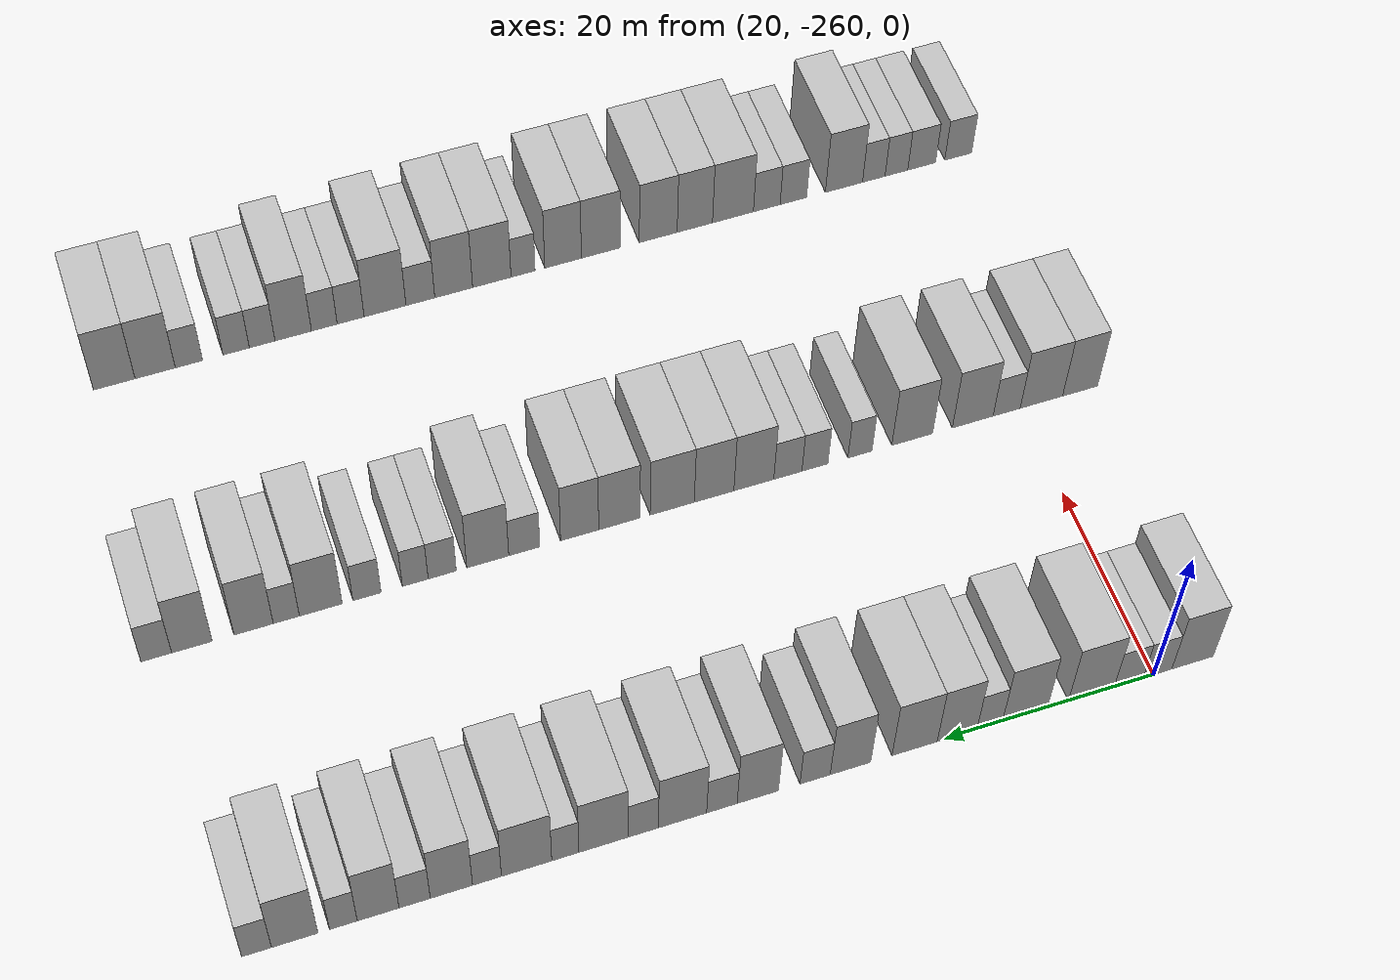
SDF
<sdf version="1.6">
 <world name="default">
  <model name="building_50">
   <static>1</static>
   <pose>25.0000 -263.7779 0 0.000000 0.000000 0.000000</pose>
   <link name="link">
    <pose>0 0 4.50 0 0 0</pose>
    <collision name="collision"><geometry><box><size>10.0000 4.0511 9.0000</size></box></geometry></collision>
    <visual name="visual">
     <cast_shadows>0</cast_shadows>
     <geometry><box><size>10.0000 4.0511 9.0000</size></box></geometry>
     <material>
      <script>
       <uri>model://HANNAS_wall/materials/scripts</uri>
       <uri>model://HANNAS_wall/materials/textures</uri>
       <name>vrc/HANNAS_wall</name>
      </script>
     </material>
    </visual>
   </link>
  </model>
  <model name="building_51">
   <static>1</static>
   <pose>25.0000 -260.3694 0 0.000000 0.000000 0.000000</pose>
   <link name="link">
    <pose>0 0 3.00 0 0 0</pose>
    <collision name="collision"><geometry><box><size>10.0000 2.7658 6.0000</size></box></geometry></collision>
    <visual name="visual">
     <cast_shadows>0</cast_shadows>
     <geometry><box><size>10.0000 2.7658 6.0000</size></box></geometry>
     <material>
      <script>
       <uri>model://HANNAS_wall/materials/scripts</uri>
       <uri>model://HANNAS_wall/materials/textures</uri>
       <name>vrc/HANNAS_wall</name>
      </script>
     </material>
    </visual>
   </link>
  </model>
  <model name="building_52">
   <static>1</static>
   <pose>25.0000 -257.5823 0 0.000000 0.000000 0.000000</pose>
   <link name="link">
    <pose>0 0 3.00 0 0 0</pose>
    <collision name="collision"><geometry><box><size>10.0000 2.8084 6.0000</size></box></geometry></collision>
    <visual name="visual">
     <cast_shadows>0</cast_shadows>
     <geometry><box><size>10.0000 2.8084 6.0000</size></box></geometry>
     <material>
      <script>
       <uri>model://HANNAS_wall/materials/scripts</uri>
       <uri>model://HANNAS_wall/materials/textures</uri>
       <name>vrc/HANNAS_wall</name>
      </script>
     </material>
    </visual>
   </link>
  </model>
  <model name="building_53">
   <static>1</static>
   <pose>25.0000 -253.9620 0 0.000000 0.000000 0.000000</pose>
   <link name="link">
    <pose>0 0 4.50 0 0 0</pose>
    <collision name="collision"><geometry><box><size>10.0000 4.4323 9.0000</size></box></geometry></collision>
    <visual name="visual">
     <cast_shadows>0</cast_shadows>
     <geometry><box><size>10.0000 4.4323 9.0000</size></box></geometry>
     <material>
      <script>
       <uri>model://HANNAS_wall/materials/scripts</uri>
       <uri>model://HANNAS_wall/materials/textures</uri>
       <name>vrc/HANNAS_wall</name>
      </script>
     </material>
    </visual>
   </link>
  </model>
  <model name="building_54">
   <static>1</static>
   <pose>25.0000 -247.5937 0 0.000000 0.000000 0.000000</pose>
   <link name="link">
    <pose>0 0 4.50 0 0 0</pose>
    <collision name="collision"><geometry><box><size>10.0000 4.3042 9.0000</size></box></geometry></collision>
    <visual name="visual">
     <cast_shadows>0</cast_shadows>
     <geometry><box><size>10.0000 4.3042 9.0000</size></box></geometry>
     <material>
      <script>
       <uri>model://HANNAS_wall/materials/scripts</uri>
       <uri>model://HANNAS_wall/materials/textures</uri>
       <name>vrc/HANNAS_wall</name>
      </script>
     </material>
    </visual>
   </link>
  </model>
  <model name="building_55">
   <static>1</static>
   <pose>25.0000 -244.2251 0 0.000000 0.000000 0.000000</pose>
   <link name="link">
    <pose>0 0 3.00 0 0 0</pose>
    <collision name="collision"><geometry><box><size>10.0000 2.4330 6.0000</size></box></geometry></collision>
    <visual name="visual">
     <cast_shadows>0</cast_shadows>
     <geometry><box><size>10.0000 2.4330 6.0000</size></box></geometry>
     <material>
      <script>
       <uri>model://HANNAS_wall/materials/scripts</uri>
       <uri>model://HANNAS_wall/materials/textures</uri>
       <name>vrc/HANNAS_wall</name>
      </script>
     </material>
    </visual>
   </link>
  </model>
  <model name="building_56">
   <static>1</static>
   <pose>25.0000 -241.1319 0 0.000000 0.000000 0.000000</pose>
   <link name="link">
    <pose>0 0 4.50 0 0 0</pose>
    <collision name="collision"><geometry><box><size>10.0000 3.7533 9.0000</size></box></geometry></collision>
    <visual name="visual">
     <cast_shadows>0</cast_shadows>
     <geometry><box><size>10.0000 3.7533 9.0000</size></box></geometry>
     <material>
      <script>
       <uri>model://HANNAS_wall/materials/scripts</uri>
       <uri>model://HANNAS_wall/materials/textures</uri>
       <name>vrc/HANNAS_wall</name>
      </script>
     </material>
    </visual>
   </link>
  </model>
  <model name="building_57">
   <static>1</static>
   <pose>25.0000 -237.1283 0 0.000000 0.000000 0.000000</pose>
   <link name="link">
    <pose>0 0 4.50 0 0 0</pose>
    <collision name="collision"><geometry><box><size>10.0000 4.2540 9.0000</size></box></geometry></collision>
    <visual name="visual">
     <cast_shadows>0</cast_shadows>
     <geometry><box><size>10.0000 4.2540 9.0000</size></box></geometry>
     <material>
      <script>
       <uri>model://HANNAS_wall/materials/scripts</uri>
       <uri>model://HANNAS_wall/materials/textures</uri>
       <name>vrc/HANNAS_wall</name>
      </script>
     </material>
    </visual>
   </link>
  </model>
  <model name="building_58">
   <static>1</static>
   <pose>25.0000 -231.1144 0 0.000000 0.000000 0.000000</pose>
   <link name="link">
    <pose>0 0 4.50 0 0 0</pose>
    <collision name="collision"><geometry><box><size>10.0000 3.7738 9.0000</size></box></geometry></collision>
    <visual name="visual">
     <cast_shadows>0</cast_shadows>
     <geometry><box><size>10.0000 3.7738 9.0000</size></box></geometry>
     <material>
      <script>
       <uri>model://HANNAS_wall/materials/scripts</uri>
       <uri>model://HANNAS_wall/materials/textures</uri>
       <name>vrc/HANNAS_wall</name>
      </script>
     </material>
    </visual>
   </link>
  </model>
  <model name="building_59">
   <static>1</static>
   <pose>25.0000 -227.8237 0 0.000000 0.000000 0.000000</pose>
   <link name="link">
    <pose>0 0 3.00 0 0 0</pose>
    <collision name="collision"><geometry><box><size>10.0000 2.8077 6.0000</size></box></geometry></collision>
    <visual name="visual">
     <cast_shadows>0</cast_shadows>
     <geometry><box><size>10.0000 2.8077 6.0000</size></box></geometry>
     <material>
      <script>
       <uri>model://HANNAS_wall/materials/scripts</uri>
       <uri>model://HANNAS_wall/materials/textures</uri>
       <name>vrc/HANNAS_wall</name>
      </script>
     </material>
    </visual>
   </link>
  </model>
  <model name="building_60">
   <static>1</static>
   <pose>25.0000 -222.5202 0 0.000000 0.000000 0.000000</pose>
   <link name="link">
    <pose>0 0 4.50 0 0 0</pose>
    <collision name="collision"><geometry><box><size>10.0000 3.7992 9.0000</size></box></geometry></collision>
    <visual name="visual">
     <cast_shadows>0</cast_shadows>
     <geometry><box><size>10.0000 3.7992 9.0000</size></box></geometry>
     <material>
      <script>
       <uri>model://HANNAS_wall/materials/scripts</uri>
       <uri>model://HANNAS_wall/materials/textures</uri>
       <name>vrc/HANNAS_wall</name>
      </script>
     </material>
    </visual>
   </link>
  </model>
  <model name="building_61">
   <static>1</static>
   <pose>25.0000 -219.2233 0 0.000000 0.000000 0.000000</pose>
   <link name="link">
    <pose>0 0 3.00 0 0 0</pose>
    <collision name="collision"><geometry><box><size>10.0000 2.7945 6.0000</size></box></geometry></collision>
    <visual name="visual">
     <cast_shadows>0</cast_shadows>
     <geometry><box><size>10.0000 2.7945 6.0000</size></box></geometry>
     <material>
      <script>
       <uri>model://HANNAS_wall/materials/scripts</uri>
       <uri>model://HANNAS_wall/materials/textures</uri>
       <name>vrc/HANNAS_wall</name>
      </script>
     </material>
    </visual>
   </link>
  </model>
  <model name="building_62">
   <static>1</static>
   <pose>25.0000 -215.6175 0 0.000000 0.000000 0.000000</pose>
   <link name="link">
    <pose>0 0 4.50 0 0 0</pose>
    <collision name="collision"><geometry><box><size>10.0000 4.4172 9.0000</size></box></geometry></collision>
    <visual name="visual">
     <cast_shadows>0</cast_shadows>
     <geometry><box><size>10.0000 4.4172 9.0000</size></box></geometry>
     <material>
      <script>
       <uri>model://HANNAS_wall/materials/scripts</uri>
       <uri>model://HANNAS_wall/materials/textures</uri>
       <name>vrc/HANNAS_wall</name>
      </script>
     </material>
    </visual>
   </link>
  </model>
  <model name="building_63">
   <static>1</static>
   <pose>25.0000 -212.0301 0 0.000000 0.000000 0.000000</pose>
   <link name="link">
    <pose>0 0 3.00 0 0 0</pose>
    <collision name="collision"><geometry><box><size>10.0000 2.7577 6.0000</size></box></geometry></collision>
    <visual name="visual">
     <cast_shadows>0</cast_shadows>
     <geometry><box><size>10.0000 2.7577 6.0000</size></box></geometry>
     <material>
      <script>
       <uri>model://HANNAS_wall/materials/scripts</uri>
       <uri>model://HANNAS_wall/materials/textures</uri>
       <name>vrc/HANNAS_wall</name>
      </script>
     </material>
    </visual>
   </link>
  </model>
  <model name="building_64">
   <static>1</static>
   <pose>25.0000 -208.4423 0 0.000000 0.000000 0.000000</pose>
   <link name="link">
    <pose>0 0 4.50 0 0 0</pose>
    <collision name="collision"><geometry><box><size>10.0000 4.4178 9.0000</size></box></geometry></collision>
    <visual name="visual">
     <cast_shadows>0</cast_shadows>
     <geometry><box><size>10.0000 4.4178 9.0000</size></box></geometry>
     <material>
      <script>
       <uri>model://HANNAS_wall/materials/scripts</uri>
       <uri>model://HANNAS_wall/materials/textures</uri>
       <name>vrc/HANNAS_wall</name>
      </script>
     </material>
    </visual>
   </link>
  </model>
  <model name="building_65">
   <static>1</static>
   <pose>25.0000 -205.0201 0 0.000000 0.000000 0.000000</pose>
   <link name="link">
    <pose>0 0 3.00 0 0 0</pose>
    <collision name="collision"><geometry><box><size>10.0000 2.4267 6.0000</size></box></geometry></collision>
    <visual name="visual">
     <cast_shadows>0</cast_shadows>
     <geometry><box><size>10.0000 2.4267 6.0000</size></box></geometry>
     <material>
      <script>
       <uri>model://HANNAS_wall/materials/scripts</uri>
       <uri>model://HANNAS_wall/materials/textures</uri>
       <name>vrc/HANNAS_wall</name>
      </script>
     </material>
    </visual>
   </link>
  </model>
  <model name="building_66">
   <static>1</static>
   <pose>25.0000 -201.5625 0 0.000000 0.000000 0.000000</pose>
   <link name="link">
    <pose>0 0 4.50 0 0 0</pose>
    <collision name="collision"><geometry><box><size>10.0000 4.4884 9.0000</size></box></geometry></collision>
    <visual name="visual">
     <cast_shadows>0</cast_shadows>
     <geometry><box><size>10.0000 4.4884 9.0000</size></box></geometry>
     <material>
      <script>
       <uri>model://HANNAS_wall/materials/scripts</uri>
       <uri>model://HANNAS_wall/materials/textures</uri>
       <name>vrc/HANNAS_wall</name>
      </script>
     </material>
    </visual>
   </link>
  </model>
  <model name="building_67">
   <static>1</static>
   <pose>25.0000 -198.0349 0 0.000000 0.000000 0.000000</pose>
   <link name="link">
    <pose>0 0 3.00 0 0 0</pose>
    <collision name="collision"><geometry><box><size>10.0000 2.5669 6.0000</size></box></geometry></collision>
    <visual name="visual">
     <cast_shadows>0</cast_shadows>
     <geometry><box><size>10.0000 2.5669 6.0000</size></box></geometry>
     <material>
      <script>
       <uri>model://HANNAS_wall/materials/scripts</uri>
       <uri>model://HANNAS_wall/materials/textures</uri>
       <name>vrc/HANNAS_wall</name>
      </script>
     </material>
    </visual>
   </link>
  </model>
  <model name="building_68">
   <static>1</static>
   <pose>25.0000 -194.8789 0 0.000000 0.000000 0.000000</pose>
   <link name="link">
    <pose>0 0 4.50 0 0 0</pose>
    <collision name="collision"><geometry><box><size>10.0000 3.7450 9.0000</size></box></geometry></collision>
    <visual name="visual">
     <cast_shadows>0</cast_shadows>
     <geometry><box><size>10.0000 3.7450 9.0000</size></box></geometry>
     <material>
      <script>
       <uri>model://HANNAS_wall/materials/scripts</uri>
       <uri>model://HANNAS_wall/materials/textures</uri>
       <name>vrc/HANNAS_wall</name>
      </script>
     </material>
    </visual>
   </link>
  </model>
  <model name="building_69">
   <static>1</static>
   <pose>25.0000 -191.6341 0 0.000000 0.000000 0.000000</pose>
   <link name="link">
    <pose>0 0 3.00 0 0 0</pose>
    <collision name="collision"><geometry><box><size>10.0000 2.7447 6.0000</size></box></geometry></collision>
    <visual name="visual">
     <cast_shadows>0</cast_shadows>
     <geometry><box><size>10.0000 2.7447 6.0000</size></box></geometry>
     <material>
      <script>
       <uri>model://HANNAS_wall/materials/scripts</uri>
       <uri>model://HANNAS_wall/materials/textures</uri>
       <name>vrc/HANNAS_wall</name>
      </script>
     </material>
    </visual>
   </link>
  </model>
  <model name="building_70">
   <static>1</static>
   <pose>25.0000 -188.4322 0 0.000000 0.000000 0.000000</pose>
   <link name="link">
    <pose>0 0 4.50 0 0 0</pose>
    <collision name="collision"><geometry><box><size>10.0000 3.6591 9.0000</size></box></geometry></collision>
    <visual name="visual">
     <cast_shadows>0</cast_shadows>
     <geometry><box><size>10.0000 3.6591 9.0000</size></box></geometry>
     <material>
      <script>
       <uri>model://HANNAS_wall/materials/scripts</uri>
       <uri>model://HANNAS_wall/materials/textures</uri>
       <name>vrc/HANNAS_wall</name>
      </script>
     </material>
    </visual>
   </link>
  </model>
  <model name="building_71">
   <static>1</static>
   <pose>25.0000 -185.3874 0 0.000000 0.000000 0.000000</pose>
   <link name="link">
    <pose>0 0 3.00 0 0 0</pose>
    <collision name="collision"><geometry><box><size>10.0000 2.4306 6.0000</size></box></geometry></collision>
    <visual name="visual">
     <cast_shadows>0</cast_shadows>
     <geometry><box><size>10.0000 2.4306 6.0000</size></box></geometry>
     <material>
      <script>
       <uri>model://HANNAS_wall/materials/scripts</uri>
       <uri>model://HANNAS_wall/materials/textures</uri>
       <name>vrc/HANNAS_wall</name>
      </script>
     </material>
    </visual>
   </link>
  </model>
  <model name="building_72">
   <static>1</static>
   <pose>25.0000 -181.1605 0 0.000000 0.000000 0.000000</pose>
   <link name="link">
    <pose>0 0 4.50 0 0 0</pose>
    <collision name="collision"><geometry><box><size>10.0000 4.0232 9.0000</size></box></geometry></collision>
    <visual name="visual">
     <cast_shadows>0</cast_shadows>
     <geometry><box><size>10.0000 4.0232 9.0000</size></box></geometry>
     <material>
      <script>
       <uri>model://HANNAS_wall/materials/scripts</uri>
       <uri>model://HANNAS_wall/materials/textures</uri>
       <name>vrc/HANNAS_wall</name>
      </script>
     </material>
    </visual>
   </link>
  </model>
  <model name="building_73">
   <static>1</static>
   <pose>25.0000 -177.8580 0 0.000000 0.000000 0.000000</pose>
   <link name="link">
    <pose>0 0 3.00 0 0 0</pose>
    <collision name="collision"><geometry><box><size>10.0000 2.5818 6.0000</size></box></geometry></collision>
    <visual name="visual">
     <cast_shadows>0</cast_shadows>
     <geometry><box><size>10.0000 2.5818 6.0000</size></box></geometry>
     <material>
      <script>
       <uri>model://HANNAS_wall/materials/scripts</uri>
       <uri>model://HANNAS_wall/materials/textures</uri>
       <name>vrc/HANNAS_wall</name>
      </script>
     </material>
    </visual>
   </link>
  </model>
  <model name="building_267">
   <static>1</static>
   <pose>55.0000 -266.1139 0 0.000000 0.000000 0.000000</pose>
   <link name="link">
    <pose>0 0 4.50 0 0 0</pose>
    <collision name="collision"><geometry><box><size>10.0000 3.6050 9.0000</size></box></geometry></collision>
    <visual name="visual">
     <cast_shadows>0</cast_shadows>
     <geometry><box><size>10.0000 3.6050 9.0000</size></box></geometry>
     <material>
      <script>
       <uri>model://HANNAS_wall/materials/scripts</uri>
       <uri>model://HANNAS_wall/materials/textures</uri>
       <name>vrc/HANNAS_wall</name>
      </script>
     </material>
    </visual>
   </link>
  </model>
  <model name="building_268">
   <static>1</static>
   <pose>55.0000 -262.1344 0 0.000000 0.000000 0.000000</pose>
   <link name="link">
    <pose>0 0 4.50 0 0 0</pose>
    <collision name="collision"><geometry><box><size>10.0000 4.3541 9.0000</size></box></geometry></collision>
    <visual name="visual">
     <cast_shadows>0</cast_shadows>
     <geometry><box><size>10.0000 4.3541 9.0000</size></box></geometry>
     <material>
      <script>
       <uri>model://HANNAS_wall/materials/scripts</uri>
       <uri>model://HANNAS_wall/materials/textures</uri>
       <name>vrc/HANNAS_wall</name>
      </script>
     </material>
    </visual>
   </link>
  </model>
  <model name="building_269">
   <static>1</static>
   <pose>55.0000 -258.5715 0 0.000000 0.000000 0.000000</pose>
   <link name="link">
    <pose>0 0 3.00 0 0 0</pose>
    <collision name="collision"><geometry><box><size>10.0000 2.7718 6.0000</size></box></geometry></collision>
    <visual name="visual">
     <cast_shadows>0</cast_shadows>
     <geometry><box><size>10.0000 2.7718 6.0000</size></box></geometry>
     <material>
      <script>
       <uri>model://HANNAS_wall/materials/scripts</uri>
       <uri>model://HANNAS_wall/materials/textures</uri>
       <name>vrc/HANNAS_wall</name>
      </script>
     </material>
    </visual>
   </link>
  </model>
  <model name="building_270">
   <static>1</static>
   <pose>55.0000 -255.1119 0 0.000000 0.000000 0.000000</pose>
   <link name="link">
    <pose>0 0 4.50 0 0 0</pose>
    <collision name="collision"><geometry><box><size>10.0000 4.1473 9.0000</size></box></geometry></collision>
    <visual name="visual">
     <cast_shadows>0</cast_shadows>
     <geometry><box><size>10.0000 4.1473 9.0000</size></box></geometry>
     <material>
      <script>
       <uri>model://HANNAS_wall/materials/scripts</uri>
       <uri>model://HANNAS_wall/materials/textures</uri>
       <name>vrc/HANNAS_wall</name>
      </script>
     </material>
    </visual>
   </link>
  </model>
  <model name="building_271">
   <static>1</static>
   <pose>55.0000 -248.9802 0 0.000000 0.000000 0.000000</pose>
   <link name="link">
    <pose>0 0 4.50 0 0 0</pose>
    <collision name="collision"><geometry><box><size>10.0000 4.1160 9.0000</size></box></geometry></collision>
    <visual name="visual">
     <cast_shadows>0</cast_shadows>
     <geometry><box><size>10.0000 4.1160 9.0000</size></box></geometry>
     <material>
      <script>
       <uri>model://HANNAS_wall/materials/scripts</uri>
       <uri>model://HANNAS_wall/materials/textures</uri>
       <name>vrc/HANNAS_wall</name>
      </script>
     </material>
    </visual>
   </link>
  </model>
  <model name="building_272">
   <static>1</static>
   <pose>55.0000 -243.7173 0 0.000000 0.000000 0.000000</pose>
   <link name="link">
    <pose>0 0 3.00 0 0 0</pose>
    <collision name="collision"><geometry><box><size>10.0000 2.4099 6.0000</size></box></geometry></collision>
    <visual name="visual">
     <cast_shadows>0</cast_shadows>
     <geometry><box><size>10.0000 2.4099 6.0000</size></box></geometry>
     <material>
      <script>
       <uri>model://HANNAS_wall/materials/scripts</uri>
       <uri>model://HANNAS_wall/materials/textures</uri>
       <name>vrc/HANNAS_wall</name>
      </script>
     </material>
    </visual>
   </link>
  </model>
  <model name="building_273">
   <static>1</static>
   <pose>55.0000 -239.2220 0 0.000000 0.000000 0.000000</pose>
   <link name="link">
    <pose>0 0 3.00 0 0 0</pose>
    <collision name="collision"><geometry><box><size>10.0000 2.5809 6.0000</size></box></geometry></collision>
    <visual name="visual">
     <cast_shadows>0</cast_shadows>
     <geometry><box><size>10.0000 2.5809 6.0000</size></box></geometry>
     <material>
      <script>
       <uri>model://HANNAS_wall/materials/scripts</uri>
       <uri>model://HANNAS_wall/materials/textures</uri>
       <name>vrc/HANNAS_wall</name>
      </script>
     </material>
    </visual>
   </link>
  </model>
  <model name="building_274">
   <static>1</static>
   <pose>55.0000 -236.5334 0 0.000000 0.000000 0.000000</pose>
   <link name="link">
    <pose>0 0 3.00 0 0 0</pose>
    <collision name="collision"><geometry><box><size>10.0000 2.7962 6.0000</size></box></geometry></collision>
    <visual name="visual">
     <cast_shadows>0</cast_shadows>
     <geometry><box><size>10.0000 2.7962 6.0000</size></box></geometry>
     <material>
      <script>
       <uri>model://HANNAS_wall/materials/scripts</uri>
       <uri>model://HANNAS_wall/materials/textures</uri>
       <name>vrc/HANNAS_wall</name>
      </script>
     </material>
    </visual>
   </link>
  </model>
  <model name="building_275">
   <static>1</static>
   <pose>55.0000 -233.1624 0 0.000000 0.000000 0.000000</pose>
   <link name="link">
    <pose>0 0 4.50 0 0 0</pose>
    <collision name="collision"><geometry><box><size>10.0000 3.9458 9.0000</size></box></geometry></collision>
    <visual name="visual">
     <cast_shadows>0</cast_shadows>
     <geometry><box><size>10.0000 3.9458 9.0000</size></box></geometry>
     <material>
      <script>
       <uri>model://HANNAS_wall/materials/scripts</uri>
       <uri>model://HANNAS_wall/materials/textures</uri>
       <name>vrc/HANNAS_wall</name>
      </script>
     </material>
    </visual>
   </link>
  </model>
  <model name="building_276">
   <static>1</static>
   <pose>55.0000 -229.2415 0 0.000000 0.000000 0.000000</pose>
   <link name="link">
    <pose>0 0 4.50 0 0 0</pose>
    <collision name="collision"><geometry><box><size>10.0000 3.8961 9.0000</size></box></geometry></collision>
    <visual name="visual">
     <cast_shadows>0</cast_shadows>
     <geometry><box><size>10.0000 3.8961 9.0000</size></box></geometry>
     <material>
      <script>
       <uri>model://HANNAS_wall/materials/scripts</uri>
       <uri>model://HANNAS_wall/materials/textures</uri>
       <name>vrc/HANNAS_wall</name>
      </script>
     </material>
    </visual>
   </link>
  </model>
  <model name="building_277">
   <static>1</static>
   <pose>55.0000 -225.1421 0 0.000000 0.000000 0.000000</pose>
   <link name="link">
    <pose>0 0 4.50 0 0 0</pose>
    <collision name="collision"><geometry><box><size>10.0000 4.3027 9.0000</size></box></geometry></collision>
    <visual name="visual">
     <cast_shadows>0</cast_shadows>
     <geometry><box><size>10.0000 4.3027 9.0000</size></box></geometry>
     <material>
      <script>
       <uri>model://HANNAS_wall/materials/scripts</uri>
       <uri>model://HANNAS_wall/materials/textures</uri>
       <name>vrc/HANNAS_wall</name>
      </script>
     </material>
    </visual>
   </link>
  </model>
  <model name="building_278">
   <static>1</static>
   <pose>55.0000 -219.9936 0 0.000000 0.000000 0.000000</pose>
   <link name="link">
    <pose>0 0 4.50 0 0 0</pose>
    <collision name="collision"><geometry><box><size>10.0000 3.9943 9.0000</size></box></geometry></collision>
    <visual name="visual">
     <cast_shadows>0</cast_shadows>
     <geometry><box><size>10.0000 3.9943 9.0000</size></box></geometry>
     <material>
      <script>
       <uri>model://HANNAS_wall/materials/scripts</uri>
       <uri>model://HANNAS_wall/materials/textures</uri>
       <name>vrc/HANNAS_wall</name>
      </script>
     </material>
    </visual>
   </link>
  </model>
  <model name="building_279">
   <static>1</static>
   <pose>55.0000 -216.1577 0 0.000000 0.000000 0.000000</pose>
   <link name="link">
    <pose>0 0 4.50 0 0 0</pose>
    <collision name="collision"><geometry><box><size>10.0000 3.6775 9.0000</size></box></geometry></collision>
    <visual name="visual">
     <cast_shadows>0</cast_shadows>
     <geometry><box><size>10.0000 3.6775 9.0000</size></box></geometry>
     <material>
      <script>
       <uri>model://HANNAS_wall/materials/scripts</uri>
       <uri>model://HANNAS_wall/materials/textures</uri>
       <name>vrc/HANNAS_wall</name>
      </script>
     </material>
    </visual>
   </link>
  </model>
  <model name="building_280">
   <static>1</static>
   <pose>55.0000 -210.8374 0 0.000000 0.000000 0.000000</pose>
   <link name="link">
    <pose>0 0 3.00 0 0 0</pose>
    <collision name="collision"><geometry><box><size>10.0000 2.9630 6.0000</size></box></geometry></collision>
    <visual name="visual">
     <cast_shadows>0</cast_shadows>
     <geometry><box><size>10.0000 2.9630 6.0000</size></box></geometry>
     <material>
      <script>
       <uri>model://HANNAS_wall/materials/scripts</uri>
       <uri>model://HANNAS_wall/materials/textures</uri>
       <name>vrc/HANNAS_wall</name>
      </script>
     </material>
    </visual>
   </link>
  </model>
  <model name="building_281">
   <static>1</static>
   <pose>55.0000 -207.3525 0 0.000000 0.000000 0.000000</pose>
   <link name="link">
    <pose>0 0 4.50 0 0 0</pose>
    <collision name="collision"><geometry><box><size>10.0000 4.0068 9.0000</size></box></geometry></collision>
    <visual name="visual">
     <cast_shadows>0</cast_shadows>
     <geometry><box><size>10.0000 4.0068 9.0000</size></box></geometry>
     <material>
      <script>
       <uri>model://HANNAS_wall/materials/scripts</uri>
       <uri>model://HANNAS_wall/materials/textures</uri>
       <name>vrc/HANNAS_wall</name>
      </script>
     </material>
    </visual>
   </link>
  </model>
  <model name="building_282">
   <static>1</static>
   <pose>55.0000 -203.0196 0 0.000000 0.000000 0.000000</pose>
   <link name="link">
    <pose>0 0 3.00 0 0 0</pose>
    <collision name="collision"><geometry><box><size>10.0000 2.6590 6.0000</size></box></geometry></collision>
    <visual name="visual">
     <cast_shadows>0</cast_shadows>
     <geometry><box><size>10.0000 2.6590 6.0000</size></box></geometry>
     <material>
      <script>
       <uri>model://HANNAS_wall/materials/scripts</uri>
       <uri>model://HANNAS_wall/materials/textures</uri>
       <name>vrc/HANNAS_wall</name>
      </script>
     </material>
    </visual>
   </link>
  </model>
  <model name="building_283">
   <static>1</static>
   <pose>55.0000 -200.4706 0 0.000000 0.000000 0.000000</pose>
   <link name="link">
    <pose>0 0 3.00 0 0 0</pose>
    <collision name="collision"><geometry><box><size>10.0000 2.4389 6.0000</size></box></geometry></collision>
    <visual name="visual">
     <cast_shadows>0</cast_shadows>
     <geometry><box><size>10.0000 2.4389 6.0000</size></box></geometry>
     <material>
      <script>
       <uri>model://HANNAS_wall/materials/scripts</uri>
       <uri>model://HANNAS_wall/materials/textures</uri>
       <name>vrc/HANNAS_wall</name>
      </script>
     </material>
    </visual>
   </link>
  </model>
  <model name="building_284">
   <static>1</static>
   <pose>55.0000 -195.9285 0 0.000000 0.000000 0.000000</pose>
   <link name="link">
    <pose>0 0 3.00 0 0 0</pose>
    <collision name="collision"><geometry><box><size>10.0000 2.6453 6.0000</size></box></geometry></collision>
    <visual name="visual">
     <cast_shadows>0</cast_shadows>
     <geometry><box><size>10.0000 2.6453 6.0000</size></box></geometry>
     <material>
      <script>
       <uri>model://HANNAS_wall/materials/scripts</uri>
       <uri>model://HANNAS_wall/materials/textures</uri>
       <name>vrc/HANNAS_wall</name>
      </script>
     </material>
    </visual>
   </link>
  </model>
  <model name="building_285">
   <static>1</static>
   <pose>55.0000 -191.6126 0 0.000000 0.000000 0.000000</pose>
   <link name="link">
    <pose>0 0 4.50 0 0 0</pose>
    <collision name="collision"><geometry><box><size>10.0000 3.9866 9.0000</size></box></geometry></collision>
    <visual name="visual">
     <cast_shadows>0</cast_shadows>
     <geometry><box><size>10.0000 3.9866 9.0000</size></box></geometry>
     <material>
      <script>
       <uri>model://HANNAS_wall/materials/scripts</uri>
       <uri>model://HANNAS_wall/materials/textures</uri>
       <name>vrc/HANNAS_wall</name>
      </script>
     </material>
    </visual>
   </link>
  </model>
  <model name="building_286">
   <static>1</static>
   <pose>55.0000 -188.3999 0 0.000000 0.000000 0.000000</pose>
   <link name="link">
    <pose>0 0 3.00 0 0 0</pose>
    <collision name="collision"><geometry><box><size>10.0000 2.4387 6.0000</size></box></geometry></collision>
    <visual name="visual">
     <cast_shadows>0</cast_shadows>
     <geometry><box><size>10.0000 2.4387 6.0000</size></box></geometry>
     <material>
      <script>
       <uri>model://HANNAS_wall/materials/scripts</uri>
       <uri>model://HANNAS_wall/materials/textures</uri>
       <name>vrc/HANNAS_wall</name>
      </script>
     </material>
    </visual>
   </link>
  </model>
  <model name="building_287">
   <static>1</static>
   <pose>55.0000 -185.3629 0 0.000000 0.000000 0.000000</pose>
   <link name="link">
    <pose>0 0 4.50 0 0 0</pose>
    <collision name="collision"><geometry><box><size>10.0000 3.6354 9.0000</size></box></geometry></collision>
    <visual name="visual">
     <cast_shadows>0</cast_shadows>
     <geometry><box><size>10.0000 3.6354 9.0000</size></box></geometry>
     <material>
      <script>
       <uri>model://HANNAS_wall/materials/scripts</uri>
       <uri>model://HANNAS_wall/materials/textures</uri>
       <name>vrc/HANNAS_wall</name>
      </script>
     </material>
    </visual>
   </link>
  </model>
  <model name="building_288">
   <static>1</static>
   <pose>55.0000 -179.6857 0 0.000000 0.000000 0.000000</pose>
   <link name="link">
    <pose>0 0 4.50 0 0 0</pose>
    <collision name="collision"><geometry><box><size>10.0000 3.7189 9.0000</size></box></geometry></collision>
    <visual name="visual">
     <cast_shadows>0</cast_shadows>
     <geometry><box><size>10.0000 3.7189 9.0000</size></box></geometry>
     <material>
      <script>
       <uri>model://HANNAS_wall/materials/scripts</uri>
       <uri>model://HANNAS_wall/materials/textures</uri>
       <name>vrc/HANNAS_wall</name>
      </script>
     </material>
    </visual>
   </link>
  </model>
  <model name="building_289">
   <static>1</static>
   <pose>55.0000 -176.4179 0 0.000000 0.000000 0.000000</pose>
   <link name="link">
    <pose>0 0 3.00 0 0 0</pose>
    <collision name="collision"><geometry><box><size>10.0000 2.8167 6.0000</size></box></geometry></collision>
    <visual name="visual">
     <cast_shadows>0</cast_shadows>
     <geometry><box><size>10.0000 2.8167 6.0000</size></box></geometry>
     <material>
      <script>
       <uri>model://HANNAS_wall/materials/scripts</uri>
       <uri>model://HANNAS_wall/materials/textures</uri>
       <name>vrc/HANNAS_wall</name>
      </script>
     </material>
    </visual>
   </link>
  </model>
  <model name="building_499">
   <static>1</static>
   <pose>85.0000 -266.0189 0 0.000000 0.000000 0.000000</pose>
   <link name="link">
    <pose>0 0 3.00 0 0 0</pose>
    <collision name="collision"><geometry><box><size>10.0000 2.9068 6.0000</size></box></geometry></collision>
    <visual name="visual">
     <cast_shadows>0</cast_shadows>
     <geometry><box><size>10.0000 2.9068 6.0000</size></box></geometry>
     <material>
      <script>
       <uri>model://HANNAS_wall/materials/scripts</uri>
       <uri>model://HANNAS_wall/materials/textures</uri>
       <name>vrc/HANNAS_wall</name>
      </script>
     </material>
    </visual>
   </link>
  </model>
  <model name="building_500">
   <static>1</static>
   <pose>85.0000 -262.0661 0 0.000000 0.000000 0.000000</pose>
   <link name="link">
    <pose>0 0 3.00 0 0 0</pose>
    <collision name="collision"><geometry><box><size>10.0000 2.9987 6.0000</size></box></geometry></collision>
    <visual name="visual">
     <cast_shadows>0</cast_shadows>
     <geometry><box><size>10.0000 2.9987 6.0000</size></box></geometry>
     <material>
      <script>
       <uri>model://HANNAS_wall/materials/scripts</uri>
       <uri>model://HANNAS_wall/materials/textures</uri>
       <name>vrc/HANNAS_wall</name>
      </script>
     </material>
    </visual>
   </link>
  </model>
  <model name="building_501">
   <static>1</static>
   <pose>85.0000 -259.3483 0 0.000000 0.000000 0.000000</pose>
   <link name="link">
    <pose>0 0 3.00 0 0 0</pose>
    <collision name="collision"><geometry><box><size>10.0000 2.4369 6.0000</size></box></geometry></collision>
    <visual name="visual">
     <cast_shadows>0</cast_shadows>
     <geometry><box><size>10.0000 2.4369 6.0000</size></box></geometry>
     <material>
      <script>
       <uri>model://HANNAS_wall/materials/scripts</uri>
       <uri>model://HANNAS_wall/materials/textures</uri>
       <name>vrc/HANNAS_wall</name>
      </script>
     </material>
    </visual>
   </link>
  </model>
  <model name="building_502">
   <static>1</static>
   <pose>85.0000 -256.9231 0 0.000000 0.000000 0.000000</pose>
   <link name="link">
    <pose>0 0 3.00 0 0 0</pose>
    <collision name="collision"><geometry><box><size>10.0000 2.4136 6.0000</size></box></geometry></collision>
    <visual name="visual">
     <cast_shadows>0</cast_shadows>
     <geometry><box><size>10.0000 2.4136 6.0000</size></box></geometry>
     <material>
      <script>
       <uri>model://HANNAS_wall/materials/scripts</uri>
       <uri>model://HANNAS_wall/materials/textures</uri>
       <name>vrc/HANNAS_wall</name>
      </script>
     </material>
    </visual>
   </link>
  </model>
  <model name="building_503">
   <static>1</static>
   <pose>85.0000 -253.7352 0 0.000000 0.000000 0.000000</pose>
   <link name="link">
    <pose>0 0 4.50 0 0 0</pose>
    <collision name="collision"><geometry><box><size>10.0000 3.9622 9.0000</size></box></geometry></collision>
    <visual name="visual">
     <cast_shadows>0</cast_shadows>
     <geometry><box><size>10.0000 3.9622 9.0000</size></box></geometry>
     <material>
      <script>
       <uri>model://HANNAS_wall/materials/scripts</uri>
       <uri>model://HANNAS_wall/materials/textures</uri>
       <name>vrc/HANNAS_wall</name>
      </script>
     </material>
    </visual>
   </link>
  </model>
  <model name="building_504">
   <static>1</static>
   <pose>85.0000 -248.3496 0 0.000000 0.000000 0.000000</pose>
   <link name="link">
    <pose>0 0 3.00 0 0 0</pose>
    <collision name="collision"><geometry><box><size>10.0000 2.8089 6.0000</size></box></geometry></collision>
    <visual name="visual">
     <cast_shadows>0</cast_shadows>
     <geometry><box><size>10.0000 2.8089 6.0000</size></box></geometry>
     <material>
      <script>
       <uri>model://HANNAS_wall/materials/scripts</uri>
       <uri>model://HANNAS_wall/materials/textures</uri>
       <name>vrc/HANNAS_wall</name>
      </script>
     </material>
    </visual>
   </link>
  </model>
  <model name="building_505">
   <static>1</static>
   <pose>85.0000 -245.5330 0 0.000000 0.000000 0.000000</pose>
   <link name="link">
    <pose>0 0 3.00 0 0 0</pose>
    <collision name="collision"><geometry><box><size>10.0000 2.8242 6.0000</size></box></geometry></collision>
    <visual name="visual">
     <cast_shadows>0</cast_shadows>
     <geometry><box><size>10.0000 2.8242 6.0000</size></box></geometry>
     <material>
      <script>
       <uri>model://HANNAS_wall/materials/scripts</uri>
       <uri>model://HANNAS_wall/materials/textures</uri>
       <name>vrc/HANNAS_wall</name>
      </script>
     </material>
    </visual>
   </link>
  </model>
  <model name="building_506">
   <static>1</static>
   <pose>85.0000 -241.9698 0 0.000000 0.000000 0.000000</pose>
   <link name="link">
    <pose>0 0 4.50 0 0 0</pose>
    <collision name="collision"><geometry><box><size>10.0000 4.3021 9.0000</size></box></geometry></collision>
    <visual name="visual">
     <cast_shadows>0</cast_shadows>
     <geometry><box><size>10.0000 4.3021 9.0000</size></box></geometry>
     <material>
      <script>
       <uri>model://HANNAS_wall/materials/scripts</uri>
       <uri>model://HANNAS_wall/materials/textures</uri>
       <name>vrc/HANNAS_wall</name>
      </script>
     </material>
    </visual>
   </link>
  </model>
  <model name="building_507">
   <static>1</static>
   <pose>85.0000 -237.9693 0 0.000000 0.000000 0.000000</pose>
   <link name="link">
    <pose>0 0 4.50 0 0 0</pose>
    <collision name="collision"><geometry><box><size>10.0000 3.6989 9.0000</size></box></geometry></collision>
    <visual name="visual">
     <cast_shadows>0</cast_shadows>
     <geometry><box><size>10.0000 3.6989 9.0000</size></box></geometry>
     <material>
      <script>
       <uri>model://HANNAS_wall/materials/scripts</uri>
       <uri>model://HANNAS_wall/materials/textures</uri>
       <name>vrc/HANNAS_wall</name>
      </script>
     </material>
    </visual>
   </link>
  </model>
  <model name="building_508">
   <static>1</static>
   <pose>85.0000 -234.1450 0 0.000000 0.000000 0.000000</pose>
   <link name="link">
    <pose>0 0 4.50 0 0 0</pose>
    <collision name="collision"><geometry><box><size>10.0000 3.9498 9.0000</size></box></geometry></collision>
    <visual name="visual">
     <cast_shadows>0</cast_shadows>
     <geometry><box><size>10.0000 3.9498 9.0000</size></box></geometry>
     <material>
      <script>
       <uri>model://HANNAS_wall/materials/scripts</uri>
       <uri>model://HANNAS_wall/materials/textures</uri>
       <name>vrc/HANNAS_wall</name>
      </script>
     </material>
    </visual>
   </link>
  </model>
  <model name="building_509">
   <static>1</static>
   <pose>85.0000 -228.1766 0 0.000000 0.000000 0.000000</pose>
   <link name="link">
    <pose>0 0 4.50 0 0 0</pose>
    <collision name="collision"><geometry><box><size>10.0000 3.9870 9.0000</size></box></geometry></collision>
    <visual name="visual">
     <cast_shadows>0</cast_shadows>
     <geometry><box><size>10.0000 3.9870 9.0000</size></box></geometry>
     <material>
      <script>
       <uri>model://HANNAS_wall/materials/scripts</uri>
       <uri>model://HANNAS_wall/materials/textures</uri>
       <name>vrc/HANNAS_wall</name>
      </script>
     </material>
    </visual>
   </link>
  </model>
  <model name="building_510">
   <static>1</static>
   <pose>85.0000 -224.3034 0 0.000000 0.000000 0.000000</pose>
   <link name="link">
    <pose>0 0 4.50 0 0 0</pose>
    <collision name="collision"><geometry><box><size>10.0000 3.7595 9.0000</size></box></geometry></collision>
    <visual name="visual">
     <cast_shadows>0</cast_shadows>
     <geometry><box><size>10.0000 3.7595 9.0000</size></box></geometry>
     <material>
      <script>
       <uri>model://HANNAS_wall/materials/scripts</uri>
       <uri>model://HANNAS_wall/materials/textures</uri>
       <name>vrc/HANNAS_wall</name>
      </script>
     </material>
    </visual>
   </link>
  </model>
  <model name="building_511">
   <static>1</static>
   <pose>85.0000 -220.1977 0 0.000000 0.000000 0.000000</pose>
   <link name="link">
    <pose>0 0 3.00 0 0 0</pose>
    <collision name="collision"><geometry><box><size>10.0000 2.4520 6.0000</size></box></geometry></collision>
    <visual name="visual">
     <cast_shadows>0</cast_shadows>
     <geometry><box><size>10.0000 2.4520 6.0000</size></box></geometry>
     <material>
      <script>
       <uri>model://HANNAS_wall/materials/scripts</uri>
       <uri>model://HANNAS_wall/materials/textures</uri>
       <name>vrc/HANNAS_wall</name>
      </script>
     </material>
    </visual>
   </link>
  </model>
  <model name="building_512">
   <static>1</static>
   <pose>85.0000 -217.0165 0 0.000000 0.000000 0.000000</pose>
   <link name="link">
    <pose>0 0 4.50 0 0 0</pose>
    <collision name="collision"><geometry><box><size>10.0000 3.9104 9.0000</size></box></geometry></collision>
    <visual name="visual">
     <cast_shadows>0</cast_shadows>
     <geometry><box><size>10.0000 3.9104 9.0000</size></box></geometry>
     <material>
      <script>
       <uri>model://HANNAS_wall/materials/scripts</uri>
       <uri>model://HANNAS_wall/materials/textures</uri>
       <name>vrc/HANNAS_wall</name>
      </script>
     </material>
    </visual>
   </link>
  </model>
  <model name="building_513">
   <static>1</static>
   <pose>85.0000 -213.1420 0 0.000000 0.000000 0.000000</pose>
   <link name="link">
    <pose>0 0 4.50 0 0 0</pose>
    <collision name="collision"><geometry><box><size>10.0000 3.8387 9.0000</size></box></geometry></collision>
    <visual name="visual">
     <cast_shadows>0</cast_shadows>
     <geometry><box><size>10.0000 3.8387 9.0000</size></box></geometry>
     <material>
      <script>
       <uri>model://HANNAS_wall/materials/scripts</uri>
       <uri>model://HANNAS_wall/materials/textures</uri>
       <name>vrc/HANNAS_wall</name>
      </script>
     </material>
    </visual>
   </link>
  </model>
  <model name="building_514">
   <static>1</static>
   <pose>85.0000 -209.7717 0 0.000000 0.000000 0.000000</pose>
   <link name="link">
    <pose>0 0 3.00 0 0 0</pose>
    <collision name="collision"><geometry><box><size>10.0000 2.9019 6.0000</size></box></geometry></collision>
    <visual name="visual">
     <cast_shadows>0</cast_shadows>
     <geometry><box><size>10.0000 2.9019 6.0000</size></box></geometry>
     <material>
      <script>
       <uri>model://HANNAS_wall/materials/scripts</uri>
       <uri>model://HANNAS_wall/materials/textures</uri>
       <name>vrc/HANNAS_wall</name>
      </script>
     </material>
    </visual>
   </link>
  </model>
  <model name="building_515">
   <static>1</static>
   <pose>85.0000 -206.2180 0 0.000000 0.000000 0.000000</pose>
   <link name="link">
    <pose>0 0 4.50 0 0 0</pose>
    <collision name="collision"><geometry><box><size>10.0000 4.2055 9.0000</size></box></geometry></collision>
    <visual name="visual">
     <cast_shadows>0</cast_shadows>
     <geometry><box><size>10.0000 4.2055 9.0000</size></box></geometry>
     <material>
      <script>
       <uri>model://HANNAS_wall/materials/scripts</uri>
       <uri>model://HANNAS_wall/materials/textures</uri>
       <name>vrc/HANNAS_wall</name>
      </script>
     </material>
    </visual>
   </link>
  </model>
  <model name="building_516">
   <static>1</static>
   <pose>85.0000 -202.7707 0 0.000000 0.000000 0.000000</pose>
   <link name="link">
    <pose>0 0 3.00 0 0 0</pose>
    <collision name="collision"><geometry><box><size>10.0000 2.6891 6.0000</size></box></geometry></collision>
    <visual name="visual">
     <cast_shadows>0</cast_shadows>
     <geometry><box><size>10.0000 2.6891 6.0000</size></box></geometry>
     <material>
      <script>
       <uri>model://HANNAS_wall/materials/scripts</uri>
       <uri>model://HANNAS_wall/materials/textures</uri>
       <name>vrc/HANNAS_wall</name>
      </script>
     </material>
    </visual>
   </link>
  </model>
  <model name="building_517">
   <static>1</static>
   <pose>85.0000 -200.1411 0 0.000000 0.000000 0.000000</pose>
   <link name="link">
    <pose>0 0 3.00 0 0 0</pose>
    <collision name="collision"><geometry><box><size>10.0000 2.5700 6.0000</size></box></geometry></collision>
    <visual name="visual">
     <cast_shadows>0</cast_shadows>
     <geometry><box><size>10.0000 2.5700 6.0000</size></box></geometry>
     <material>
      <script>
       <uri>model://HANNAS_wall/materials/scripts</uri>
       <uri>model://HANNAS_wall/materials/textures</uri>
       <name>vrc/HANNAS_wall</name>
      </script>
     </material>
    </visual>
   </link>
  </model>
  <model name="building_518">
   <static>1</static>
   <pose>85.0000 -197.0480 0 0.000000 0.000000 0.000000</pose>
   <link name="link">
    <pose>0 0 4.50 0 0 0</pose>
    <collision name="collision"><geometry><box><size>10.0000 3.6161 9.0000</size></box></geometry></collision>
    <visual name="visual">
     <cast_shadows>0</cast_shadows>
     <geometry><box><size>10.0000 3.6161 9.0000</size></box></geometry>
     <material>
      <script>
       <uri>model://HANNAS_wall/materials/scripts</uri>
       <uri>model://HANNAS_wall/materials/textures</uri>
       <name>vrc/HANNAS_wall</name>
      </script>
     </material>
    </visual>
   </link>
  </model>
  <model name="building_519">
   <static>1</static>
   <pose>85.0000 -193.9657 0 0.000000 0.000000 0.000000</pose>
   <link name="link">
    <pose>0 0 3.00 0 0 0</pose>
    <collision name="collision"><geometry><box><size>10.0000 2.5485 6.0000</size></box></geometry></collision>
    <visual name="visual">
     <cast_shadows>0</cast_shadows>
     <geometry><box><size>10.0000 2.5485 6.0000</size></box></geometry>
     <material>
      <script>
       <uri>model://HANNAS_wall/materials/scripts</uri>
       <uri>model://HANNAS_wall/materials/textures</uri>
       <name>vrc/HANNAS_wall</name>
      </script>
     </material>
    </visual>
   </link>
  </model>
  <model name="building_520">
   <static>1</static>
   <pose>85.0000 -191.3946 0 0.000000 0.000000 0.000000</pose>
   <link name="link">
    <pose>0 0 3.00 0 0 0</pose>
    <collision name="collision"><geometry><box><size>10.0000 2.5936 6.0000</size></box></geometry></collision>
    <visual name="visual">
     <cast_shadows>0</cast_shadows>
     <geometry><box><size>10.0000 2.5936 6.0000</size></box></geometry>
     <material>
      <script>
       <uri>model://HANNAS_wall/materials/scripts</uri>
       <uri>model://HANNAS_wall/materials/textures</uri>
       <name>vrc/HANNAS_wall</name>
      </script>
     </material>
    </visual>
   </link>
  </model>
  <model name="building_521">
   <static>1</static>
   <pose>85.0000 -186.7619 0 0.000000 0.000000 0.000000</pose>
   <link name="link">
    <pose>0 0 3.00 0 0 0</pose>
    <collision name="collision"><geometry><box><size>10.0000 2.6718 6.0000</size></box></geometry></collision>
    <visual name="visual">
     <cast_shadows>0</cast_shadows>
     <geometry><box><size>10.0000 2.6718 6.0000</size></box></geometry>
     <material>
      <script>
       <uri>model://HANNAS_wall/materials/scripts</uri>
       <uri>model://HANNAS_wall/materials/textures</uri>
       <name>vrc/HANNAS_wall</name>
      </script>
     </material>
    </visual>
   </link>
  </model>
  <model name="building_522">
   <static>1</static>
   <pose>85.0000 -183.4644 0 0.000000 0.000000 0.000000</pose>
   <link name="link">
    <pose>0 0 4.50 0 0 0</pose>
    <collision name="collision"><geometry><box><size>10.0000 3.9232 9.0000</size></box></geometry></collision>
    <visual name="visual">
     <cast_shadows>0</cast_shadows>
     <geometry><box><size>10.0000 3.9232 9.0000</size></box></geometry>
     <material>
      <script>
       <uri>model://HANNAS_wall/materials/scripts</uri>
       <uri>model://HANNAS_wall/materials/textures</uri>
       <name>vrc/HANNAS_wall</name>
      </script>
     </material>
    </visual>
   </link>
  </model>
  <model name="building_523">
   <static>1</static>
   <pose>85.0000 -179.4848 0 0.000000 0.000000 0.000000</pose>
   <link name="link">
    <pose>0 0 4.50 0 0 0</pose>
    <collision name="collision"><geometry><box><size>10.0000 4.0360 9.0000</size></box></geometry></collision>
    <visual name="visual">
     <cast_shadows>0</cast_shadows>
     <geometry><box><size>10.0000 4.0360 9.0000</size></box></geometry>
     <material>
      <script>
       <uri>model://HANNAS_wall/materials/scripts</uri>
       <uri>model://HANNAS_wall/materials/textures</uri>
       <name>vrc/HANNAS_wall</name>
      </script>
     </material>
    </visual>
   </link>
  </model>
 </world>
</sdf>
